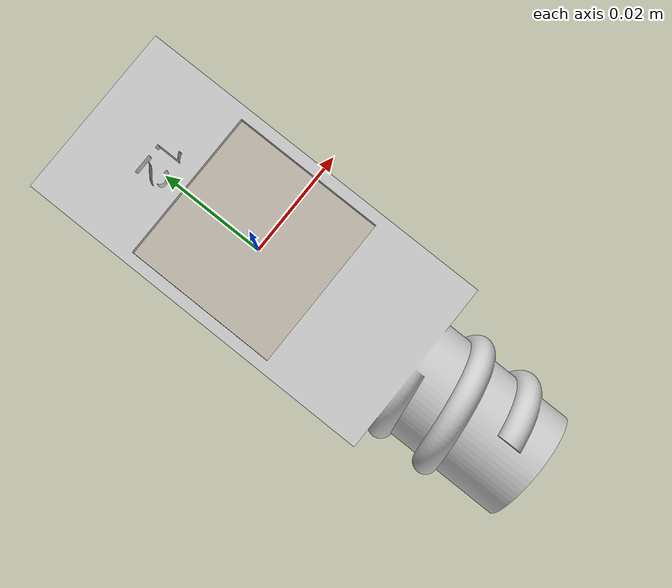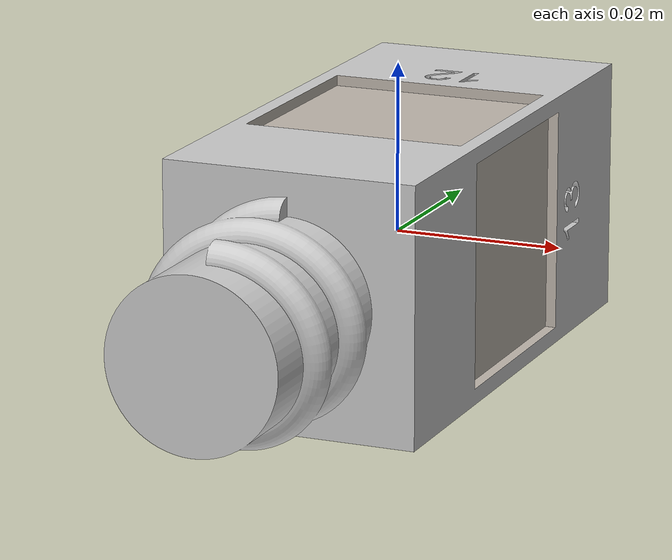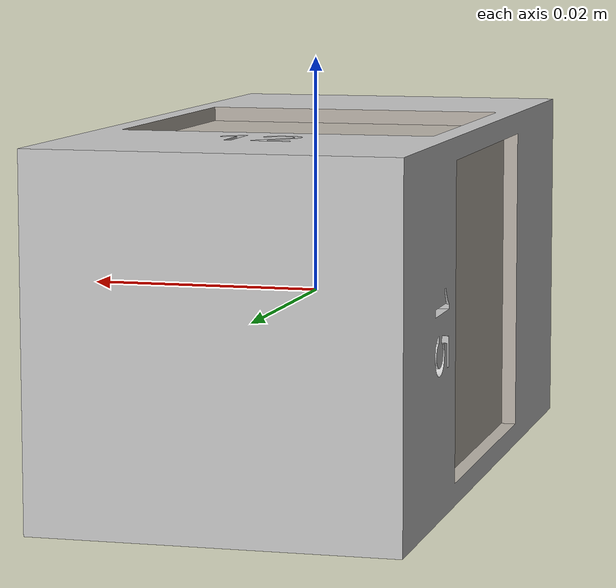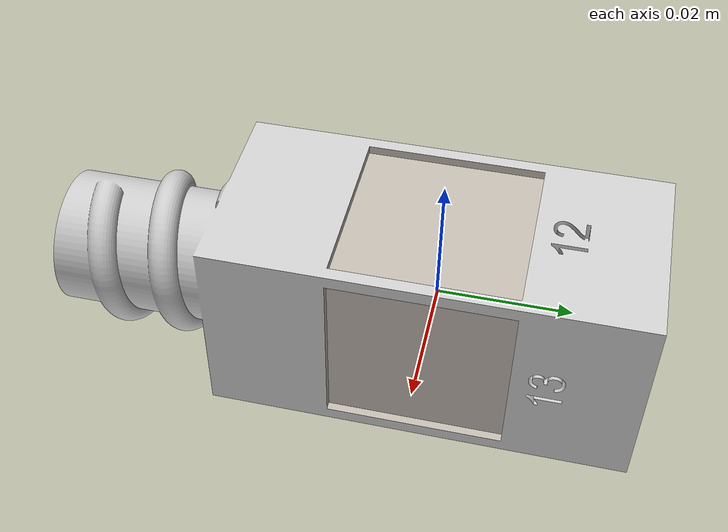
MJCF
<mujoco model="square_table_leg2">
  <default>
    <default class="visual">
      <geom group="2" type="mesh" contype="0" conaffinity="0"/>
    </default>
    <default class="collision">
      <geom group="3" type="mesh"/>
    </default>
  </default>
  <asset>
    <texture type="2d" name="tag36_11_00012" file="tag36_11_00012.png"/>
    <material name="Material.001" texture="tag36_11_00012" specular="0.5" shininess="0.25"/>
    <texture type="2d" name="tag36_11_00013" file="tag36_11_00013.png"/>
    <material name="Material.002" texture="tag36_11_00013" specular="0.5" shininess="0.25"/>
    <texture type="2d" name="tag36_11_00014" file="tag36_11_00014.png"/>
    <material name="Material.003" texture="tag36_11_00014" specular="0.5" shininess="0.25"/>
    <texture type="2d" name="tag36_11_00015" file="tag36_11_00015.png"/>
    <material name="Material.004" texture="tag36_11_00015" specular="0.5" shininess="0.25"/>
    <material name="Material.005" specular="0.5" shininess="0.25" rgba="0.800000 0.800000 0.800000 1.000000"/>
    <mesh file="square_table_leg2_0.obj"/>
    <mesh file="square_table_leg2_1.obj"/>
    <mesh file="square_table_leg2_2.obj"/>
    <mesh file="square_table_leg2_3.obj"/>
    <mesh file="square_table_leg2_4.obj"/>
  </asset>
  <worldbody>
    <body name="square_table_leg2">
      <freejoint/>
      <geom mesh="square_table_leg2_0" material="Material.004" class="visual"/>
      <geom mesh="square_table_leg2_1" material="Material.003" class="visual"/>
      <geom mesh="square_table_leg2_2" material="Material.002" class="visual"/>
      <geom mesh="square_table_leg2_3" material="Material.001" class="visual"/>
      <geom mesh="square_table_leg2_4" material="Material.005" class="visual"/>
      <geom mesh="square_table_leg2_0" class="collision"/>
      <geom mesh="square_table_leg2_1" class="collision"/>
      <geom mesh="square_table_leg2_2" class="collision"/>
      <geom mesh="square_table_leg2_3" class="collision"/>
      <geom mesh="square_table_leg2_4" class="collision"/>
    </body>
  </worldbody>
</mujoco>
